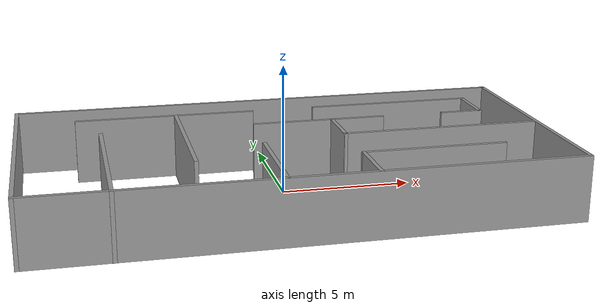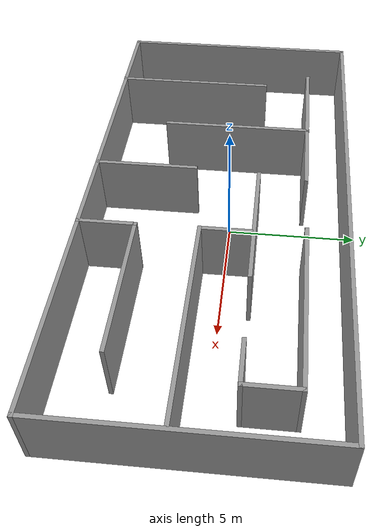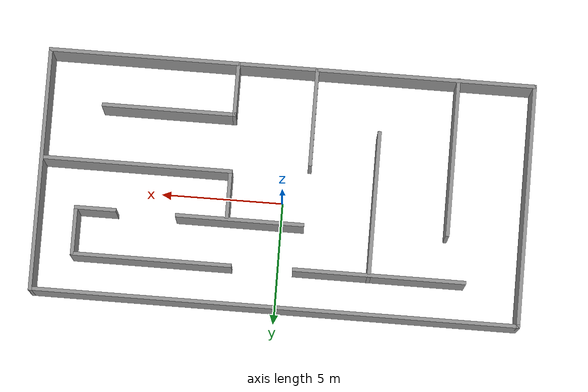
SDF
<?xml version='1.0'?>
<sdf version='1.7'>
  <model name='room1'>
    <link name='Wall_0'>
      <pose>0 4.5075 0 0 -0 0</pose>
      <self_collide>0</self_collide>
      <enable_wind>0</enable_wind>
      <kinematic>0</kinematic>
      <visual name='Wall_0_Visual'>
        <pose>0 0 1.25 0 -0 0</pose>
        <geometry>
          <box>
            <size>20 0.15 2.5</size>
          </box>
        </geometry>
        <material>
          <script>
            <uri>file://media/materials/scripts/gazebo.material</uri>
            <name>Gazebo/Grey</name>
          </script>
          <ambient>1 1 1 1</ambient>
          <shader type='pixel'/>
        </material>
        <meta>
          <layer>0</layer>
        </meta>
        <transparency>0</transparency>
        <cast_shadows>1</cast_shadows>
      </visual>
      <collision name='Wall_0_Collision'>
        <laser_retro>0</laser_retro>
        <max_contacts>10</max_contacts>
        <pose>0 0 1.25 0 -0 0</pose>
        <geometry>
          <box>
            <size>20 0.15 2.5</size>
          </box>
        </geometry>
        <surface>
          <friction>
            <ode>
              <mu>1</mu>
              <mu2>1</mu2>
              <fdir1>0 0 0</fdir1>
              <slip1>0</slip1>
              <slip2>0</slip2>
            </ode>
            <torsional>
              <coefficient>1</coefficient>
              <patch_radius>0</patch_radius>
              <surface_radius>0</surface_radius>
              <use_patch_radius>1</use_patch_radius>
              <ode>
                <slip>0</slip>
              </ode>
            </torsional>
          </friction>
          <bounce>
            <restitution_coefficient>0</restitution_coefficient>
            <threshold>1e+06</threshold>
          </bounce>
          <contact>
            <collide_without_contact>0</collide_without_contact>
            <collide_without_contact_bitmask>1</collide_without_contact_bitmask>
            <collide_bitmask>1</collide_bitmask>
            <ode>
              <soft_cfm>0</soft_cfm>
              <soft_erp>0.2</soft_erp>
              <kp>1e+13</kp>
              <kd>1</kd>
              <max_vel>0.01</max_vel>
              <min_depth>0</min_depth>
            </ode>
            <bullet>
              <split_impulse>1</split_impulse>
              <split_impulse_penetration_threshold>-0.01</split_impulse_penetration_threshold>
              <soft_cfm>0</soft_cfm>
              <soft_erp>0.2</soft_erp>
              <kp>1e+13</kp>
              <kd>1</kd>
            </bullet>
          </contact>
        </surface>
      </collision>
    </link>
    <link name='Wall_1'>
      <pose>9.925 -0.4175 0 0 0 -1.5708</pose>
      <self_collide>0</self_collide>
      <enable_wind>0</enable_wind>
      <kinematic>0</kinematic>
      <visual name='Wall_1_Visual'>
        <pose>0 0 1.25 0 -0 0</pose>
        <geometry>
          <box>
            <size>10 0.15 2.5</size>
          </box>
        </geometry>
        <material>
          <script>
            <uri>file://media/materials/scripts/gazebo.material</uri>
            <name>Gazebo/Grey</name>
          </script>
          <ambient>1 1 1 1</ambient>
          <shader type='pixel'/>
        </material>
        <meta>
          <layer>0</layer>
        </meta>
        <transparency>0</transparency>
        <cast_shadows>1</cast_shadows>
      </visual>
      <collision name='Wall_1_Collision'>
        <laser_retro>0</laser_retro>
        <max_contacts>10</max_contacts>
        <pose>0 0 1.25 0 -0 0</pose>
        <geometry>
          <box>
            <size>10 0.15 2.5</size>
          </box>
        </geometry>
        <surface>
          <friction>
            <ode>
              <mu>1</mu>
              <mu2>1</mu2>
              <fdir1>0 0 0</fdir1>
              <slip1>0</slip1>
              <slip2>0</slip2>
            </ode>
            <torsional>
              <coefficient>1</coefficient>
              <patch_radius>0</patch_radius>
              <surface_radius>0</surface_radius>
              <use_patch_radius>1</use_patch_radius>
              <ode>
                <slip>0</slip>
              </ode>
            </torsional>
          </friction>
          <bounce>
            <restitution_coefficient>0</restitution_coefficient>
            <threshold>1e+06</threshold>
          </bounce>
          <contact>
            <collide_without_contact>0</collide_without_contact>
            <collide_without_contact_bitmask>1</collide_without_contact_bitmask>
            <collide_bitmask>1</collide_bitmask>
            <ode>
              <soft_cfm>0</soft_cfm>
              <soft_erp>0.2</soft_erp>
              <kp>1e+13</kp>
              <kd>1</kd>
              <max_vel>0.01</max_vel>
              <min_depth>0</min_depth>
            </ode>
            <bullet>
              <split_impulse>1</split_impulse>
              <split_impulse_penetration_threshold>-0.01</split_impulse_penetration_threshold>
              <soft_cfm>0</soft_cfm>
              <soft_erp>0.2</soft_erp>
              <kp>1e+13</kp>
              <kd>1</kd>
            </bullet>
          </contact>
        </surface>
      </collision>
    </link>
    <link name='Wall_10'>
      <pose>1.665 1.0675 0 0 -0 3.14159</pose>
      <self_collide>0</self_collide>
      <enable_wind>0</enable_wind>
      <kinematic>0</kinematic>
      <visual name='Wall_10_Visual'>
        <pose>0 0 1.25 0 -0 0</pose>
        <geometry>
          <box>
            <size>5.25 0.15 2.5</size>
          </box>
        </geometry>
        <material>
          <script>
            <uri>file://media/materials/scripts/gazebo.material</uri>
            <name>Gazebo/Grey</name>
          </script>
          <ambient>1 1 1 1</ambient>
          <shader type='pixel'/>
        </material>
        <meta>
          <layer>0</layer>
        </meta>
        <transparency>0</transparency>
        <cast_shadows>1</cast_shadows>
      </visual>
      <collision name='Wall_10_Collision'>
        <laser_retro>0</laser_retro>
        <max_contacts>10</max_contacts>
        <pose>0 0 1.25 0 -0 0</pose>
        <geometry>
          <box>
            <size>5.25 0.15 2.5</size>
          </box>
        </geometry>
        <surface>
          <friction>
            <ode>
              <mu>1</mu>
              <mu2>1</mu2>
              <fdir1>0 0 0</fdir1>
              <slip1>0</slip1>
              <slip2>0</slip2>
            </ode>
            <torsional>
              <coefficient>1</coefficient>
              <patch_radius>0</patch_radius>
              <surface_radius>0</surface_radius>
              <use_patch_radius>1</use_patch_radius>
              <ode>
                <slip>0</slip>
              </ode>
            </torsional>
          </friction>
          <bounce>
            <restitution_coefficient>0</restitution_coefficient>
            <threshold>1e+06</threshold>
          </bounce>
          <contact>
            <collide_without_contact>0</collide_without_contact>
            <collide_without_contact_bitmask>1</collide_without_contact_bitmask>
            <collide_bitmask>1</collide_bitmask>
            <ode>
              <soft_cfm>0</soft_cfm>
              <soft_erp>0.2</soft_erp>
              <kp>1e+13</kp>
              <kd>1</kd>
              <max_vel>0.01</max_vel>
              <min_depth>0</min_depth>
            </ode>
            <bullet>
              <split_impulse>1</split_impulse>
              <split_impulse_penetration_threshold>-0.01</split_impulse_penetration_threshold>
              <soft_cfm>0</soft_cfm>
              <soft_erp>0.2</soft_erp>
              <kp>1e+13</kp>
              <kd>1</kd>
            </bullet>
          </contact>
        </surface>
      </collision>
    </link>
    <link name='Wall_12'>
      <pose>-3.745 -0.0075 0 0 0 -1.5708</pose>
      <self_collide>0</self_collide>
      <enable_wind>0</enable_wind>
      <kinematic>0</kinematic>
      <visual name='Wall_12_Visual'>
        <pose>0 0 1.25 0 -0 0</pose>
        <geometry>
          <box>
            <size>6 0.15 2.5</size>
          </box>
        </geometry>
        <material>
          <script>
            <uri>file://media/materials/scripts/gazebo.material</uri>
            <name>Gazebo/Grey</name>
          </script>
          <ambient>1 1 1 1</ambient>
          <shader type='pixel'/>
        </material>
        <meta>
          <layer>0</layer>
        </meta>
        <transparency>0</transparency>
        <cast_shadows>1</cast_shadows>
      </visual>
      <collision name='Wall_12_Collision'>
        <laser_retro>0</laser_retro>
        <max_contacts>10</max_contacts>
        <pose>0 0 1.25 0 -0 0</pose>
        <geometry>
          <box>
            <size>6 0.15 2.5</size>
          </box>
        </geometry>
        <surface>
          <friction>
            <ode>
              <mu>1</mu>
              <mu2>1</mu2>
              <fdir1>0 0 0</fdir1>
              <slip1>0</slip1>
              <slip2>0</slip2>
            </ode>
            <torsional>
              <coefficient>1</coefficient>
              <patch_radius>0</patch_radius>
              <surface_radius>0</surface_radius>
              <use_patch_radius>1</use_patch_radius>
              <ode>
                <slip>0</slip>
              </ode>
            </torsional>
          </friction>
          <bounce>
            <restitution_coefficient>0</restitution_coefficient>
            <threshold>1e+06</threshold>
          </bounce>
          <contact>
            <collide_without_contact>0</collide_without_contact>
            <collide_without_contact_bitmask>1</collide_without_contact_bitmask>
            <collide_bitmask>1</collide_bitmask>
            <ode>
              <soft_cfm>0</soft_cfm>
              <soft_erp>0.2</soft_erp>
              <kp>1e+13</kp>
              <kd>1</kd>
              <max_vel>0.01</max_vel>
              <min_depth>0</min_depth>
            </ode>
            <bullet>
              <split_impulse>1</split_impulse>
              <split_impulse_penetration_threshold>-0.01</split_impulse_penetration_threshold>
              <soft_cfm>0</soft_cfm>
              <soft_erp>0.2</soft_erp>
              <kp>1e+13</kp>
              <kd>1</kd>
            </bullet>
          </contact>
        </surface>
      </collision>
    </link>
    <link name='Wall_14'>
      <pose>-6.805 -2.1775 0 0 0 -1.5708</pose>
      <self_collide>0</self_collide>
      <enable_wind>0</enable_wind>
      <kinematic>0</kinematic>
      <visual name='Wall_14_Visual'>
        <pose>0 0 1.25 0 -0 0</pose>
        <geometry>
          <box>
            <size>6.5 0.15 2.5</size>
          </box>
        </geometry>
        <material>
          <script>
            <uri>file://media/materials/scripts/gazebo.material</uri>
            <name>Gazebo/Grey</name>
          </script>
          <ambient>1 1 1 1</ambient>
          <shader type='pixel'/>
        </material>
        <meta>
          <layer>0</layer>
        </meta>
        <transparency>0</transparency>
        <cast_shadows>1</cast_shadows>
      </visual>
      <collision name='Wall_14_Collision'>
        <laser_retro>0</laser_retro>
        <max_contacts>10</max_contacts>
        <pose>0 0 1.25 0 -0 0</pose>
        <geometry>
          <box>
            <size>6.5 0.15 2.5</size>
          </box>
        </geometry>
        <surface>
          <friction>
            <ode>
              <mu>1</mu>
              <mu2>1</mu2>
              <fdir1>0 0 0</fdir1>
              <slip1>0</slip1>
              <slip2>0</slip2>
            </ode>
            <torsional>
              <coefficient>1</coefficient>
              <patch_radius>0</patch_radius>
              <surface_radius>0</surface_radius>
              <use_patch_radius>1</use_patch_radius>
              <ode>
                <slip>0</slip>
              </ode>
            </torsional>
          </friction>
          <bounce>
            <restitution_coefficient>0</restitution_coefficient>
            <threshold>1e+06</threshold>
          </bounce>
          <contact>
            <collide_without_contact>0</collide_without_contact>
            <collide_without_contact_bitmask>1</collide_without_contact_bitmask>
            <collide_bitmask>1</collide_bitmask>
            <ode>
              <soft_cfm>0</soft_cfm>
              <soft_erp>0.2</soft_erp>
              <kp>1e+13</kp>
              <kd>1</kd>
              <max_vel>0.01</max_vel>
              <min_depth>0</min_depth>
            </ode>
            <bullet>
              <split_impulse>1</split_impulse>
              <split_impulse_penetration_threshold>-0.01</split_impulse_penetration_threshold>
              <soft_cfm>0</soft_cfm>
              <soft_erp>0.2</soft_erp>
              <kp>1e+13</kp>
              <kd>1</kd>
            </bullet>
          </contact>
        </surface>
      </collision>
    </link>
    <link name='Wall_16'>
      <pose>2.195 0.0325 0 0 0 -1.5708</pose>
      <self_collide>0</self_collide>
      <enable_wind>0</enable_wind>
      <kinematic>0</kinematic>
      <visual name='Wall_16_Visual'>
        <pose>0 0 1.25 0 -0 0</pose>
        <geometry>
          <box>
            <size>2 0.15 2.5</size>
          </box>
        </geometry>
        <material>
          <script>
            <uri>file://media/materials/scripts/gazebo.material</uri>
            <name>Gazebo/Grey</name>
          </script>
          <ambient>1 1 1 1</ambient>
          <shader type='pixel'/>
        </material>
        <meta>
          <layer>0</layer>
        </meta>
        <transparency>0</transparency>
        <cast_shadows>1</cast_shadows>
      </visual>
      <collision name='Wall_16_Collision'>
        <laser_retro>0</laser_retro>
        <max_contacts>10</max_contacts>
        <pose>0 0 1.25 0 -0 0</pose>
        <geometry>
          <box>
            <size>2 0.15 2.5</size>
          </box>
        </geometry>
        <surface>
          <friction>
            <ode>
              <mu>1</mu>
              <mu2>1</mu2>
              <fdir1>0 0 0</fdir1>
              <slip1>0</slip1>
              <slip2>0</slip2>
            </ode>
            <torsional>
              <coefficient>1</coefficient>
              <patch_radius>0</patch_radius>
              <surface_radius>0</surface_radius>
              <use_patch_radius>1</use_patch_radius>
              <ode>
                <slip>0</slip>
              </ode>
            </torsional>
          </friction>
          <bounce>
            <restitution_coefficient>0</restitution_coefficient>
            <threshold>1e+06</threshold>
          </bounce>
          <contact>
            <collide_without_contact>0</collide_without_contact>
            <collide_without_contact_bitmask>1</collide_without_contact_bitmask>
            <collide_bitmask>1</collide_bitmask>
            <ode>
              <soft_cfm>0</soft_cfm>
              <soft_erp>0.2</soft_erp>
              <kp>1e+13</kp>
              <kd>1</kd>
              <max_vel>0.01</max_vel>
              <min_depth>0</min_depth>
            </ode>
            <bullet>
              <split_impulse>1</split_impulse>
              <split_impulse_penetration_threshold>-0.01</split_impulse_penetration_threshold>
              <soft_cfm>0</soft_cfm>
              <soft_erp>0.2</soft_erp>
              <kp>1e+13</kp>
              <kd>1</kd>
            </bullet>
          </contact>
        </surface>
      </collision>
    </link>
    <link name='Wall_18'>
      <pose>2.225 -4.2825 0 0 0 -1.5708</pose>
      <self_collide>0</self_collide>
      <enable_wind>0</enable_wind>
      <kinematic>0</kinematic>
      <visual name='Wall_18_Visual'>
        <pose>0 0 1.25 0 -0 0</pose>
        <geometry>
          <box>
            <size>2.25 0.15 2.5</size>
          </box>
        </geometry>
        <material>
          <script>
            <uri>file://media/materials/scripts/gazebo.material</uri>
            <name>Gazebo/Grey</name>
          </script>
          <ambient>1 1 1 1</ambient>
          <shader type='pixel'/>
        </material>
        <meta>
          <layer>0</layer>
        </meta>
        <transparency>0</transparency>
        <cast_shadows>1</cast_shadows>
      </visual>
      <collision name='Wall_18_Collision'>
        <laser_retro>0</laser_retro>
        <max_contacts>10</max_contacts>
        <pose>0 0 1.25 0 -0 0</pose>
        <geometry>
          <box>
            <size>2.25 0.15 2.5</size>
          </box>
        </geometry>
        <surface>
          <friction>
            <ode>
              <mu>1</mu>
              <mu2>1</mu2>
              <fdir1>0 0 0</fdir1>
              <slip1>0</slip1>
              <slip2>0</slip2>
            </ode>
            <torsional>
              <coefficient>1</coefficient>
              <patch_radius>0</patch_radius>
              <surface_radius>0</surface_radius>
              <use_patch_radius>1</use_patch_radius>
              <ode>
                <slip>0</slip>
              </ode>
            </torsional>
          </friction>
          <bounce>
            <restitution_coefficient>0</restitution_coefficient>
            <threshold>1e+06</threshold>
          </bounce>
          <contact>
            <collide_without_contact>0</collide_without_contact>
            <collide_without_contact_bitmask>1</collide_without_contact_bitmask>
            <collide_bitmask>1</collide_bitmask>
            <ode>
              <soft_cfm>0</soft_cfm>
              <soft_erp>0.2</soft_erp>
              <kp>1e+13</kp>
              <kd>1</kd>
              <max_vel>0.01</max_vel>
              <min_depth>0</min_depth>
            </ode>
            <bullet>
              <split_impulse>1</split_impulse>
              <split_impulse_penetration_threshold>-0.01</split_impulse_penetration_threshold>
              <soft_cfm>0</soft_cfm>
              <soft_erp>0.2</soft_erp>
              <kp>1e+13</kp>
              <kd>1</kd>
            </bullet>
          </contact>
        </surface>
      </collision>
    </link>
    <link name='Wall_2'>
      <pose>0 -5.3425 0 0 -0 3.14159</pose>
      <self_collide>0</self_collide>
      <enable_wind>0</enable_wind>
      <kinematic>0</kinematic>
      <visual name='Wall_2_Visual'>
        <pose>0 0 1.25 0 -0 0</pose>
        <geometry>
          <box>
            <size>20 0.15 2.5</size>
          </box>
        </geometry>
        <material>
          <script>
            <uri>file://media/materials/scripts/gazebo.material</uri>
            <name>Gazebo/Grey</name>
          </script>
          <ambient>1 1 1 1</ambient>
          <shader type='pixel'/>
        </material>
        <meta>
          <layer>0</layer>
        </meta>
        <transparency>0</transparency>
        <cast_shadows>1</cast_shadows>
      </visual>
      <collision name='Wall_2_Collision'>
        <laser_retro>0</laser_retro>
        <max_contacts>10</max_contacts>
        <pose>0 0 1.25 0 -0 0</pose>
        <geometry>
          <box>
            <size>20 0.15 2.5</size>
          </box>
        </geometry>
        <surface>
          <friction>
            <ode>
              <mu>1</mu>
              <mu2>1</mu2>
              <fdir1>0 0 0</fdir1>
              <slip1>0</slip1>
              <slip2>0</slip2>
            </ode>
            <torsional>
              <coefficient>1</coefficient>
              <patch_radius>0</patch_radius>
              <surface_radius>0</surface_radius>
              <use_patch_radius>1</use_patch_radius>
              <ode>
                <slip>0</slip>
              </ode>
            </torsional>
          </friction>
          <bounce>
            <restitution_coefficient>0</restitution_coefficient>
            <threshold>1e+06</threshold>
          </bounce>
          <contact>
            <collide_without_contact>0</collide_without_contact>
            <collide_without_contact_bitmask>1</collide_without_contact_bitmask>
            <collide_bitmask>1</collide_bitmask>
            <ode>
              <soft_cfm>0</soft_cfm>
              <soft_erp>0.2</soft_erp>
              <kp>1e+13</kp>
              <kd>1</kd>
              <max_vel>0.01</max_vel>
              <min_depth>0</min_depth>
            </ode>
            <bullet>
              <split_impulse>1</split_impulse>
              <split_impulse_penetration_threshold>-0.01</split_impulse_penetration_threshold>
              <soft_cfm>0</soft_cfm>
              <soft_erp>0.2</soft_erp>
              <kp>1e+13</kp>
              <kd>1</kd>
            </bullet>
          </contact>
        </surface>
      </collision>
    </link>
    <link name='Wall_20'>
      <pose>5.995 -0.8925 0 0 -0 0</pose>
      <self_collide>0</self_collide>
      <enable_wind>0</enable_wind>
      <kinematic>0</kinematic>
      <visual name='Wall_20_Visual'>
        <pose>0 0 1.25 0 -0 0</pose>
        <geometry>
          <box>
            <size>7.75 0.15 2.5</size>
          </box>
        </geometry>
        <material>
          <script>
            <uri>file://media/materials/scripts/gazebo.material</uri>
            <name>Gazebo/Grey</name>
          </script>
          <ambient>1 1 1 1</ambient>
          <shader type='pixel'/>
        </material>
        <meta>
          <layer>0</layer>
        </meta>
        <transparency>0</transparency>
        <cast_shadows>1</cast_shadows>
      </visual>
      <collision name='Wall_20_Collision'>
        <laser_retro>0</laser_retro>
        <max_contacts>10</max_contacts>
        <pose>0 0 1.25 0 -0 0</pose>
        <geometry>
          <box>
            <size>7.75 0.15 2.5</size>
          </box>
        </geometry>
        <surface>
          <friction>
            <ode>
              <mu>1</mu>
              <mu2>1</mu2>
              <fdir1>0 0 0</fdir1>
              <slip1>0</slip1>
              <slip2>0</slip2>
            </ode>
            <torsional>
              <coefficient>1</coefficient>
              <patch_radius>0</patch_radius>
              <surface_radius>0</surface_radius>
              <use_patch_radius>1</use_patch_radius>
              <ode>
                <slip>0</slip>
              </ode>
            </torsional>
          </friction>
          <bounce>
            <restitution_coefficient>0</restitution_coefficient>
            <threshold>1e+06</threshold>
          </bounce>
          <contact>
            <collide_without_contact>0</collide_without_contact>
            <collide_without_contact_bitmask>1</collide_without_contact_bitmask>
            <collide_bitmask>1</collide_bitmask>
            <ode>
              <soft_cfm>0</soft_cfm>
              <soft_erp>0.2</soft_erp>
              <kp>1e+13</kp>
              <kd>1</kd>
              <max_vel>0.01</max_vel>
              <min_depth>0</min_depth>
            </ode>
            <bullet>
              <split_impulse>1</split_impulse>
              <split_impulse_penetration_threshold>-0.01</split_impulse_penetration_threshold>
              <soft_cfm>0</soft_cfm>
              <soft_erp>0.2</soft_erp>
              <kp>1e+13</kp>
              <kd>1</kd>
            </bullet>
          </contact>
        </surface>
      </collision>
    </link>
    <link name='Wall_22'>
      <pose>4.9 -3.2325 0 0 -0 0</pose>
      <self_collide>0</self_collide>
      <enable_wind>0</enable_wind>
      <kinematic>0</kinematic>
      <visual name='Wall_22_Visual'>
        <pose>0 0 1.25 0 -0 0</pose>
        <geometry>
          <box>
            <size>5.5 0.15 2.5</size>
          </box>
        </geometry>
        <material>
          <script>
            <uri>file://media/materials/scripts/gazebo.material</uri>
            <name>Gazebo/Grey</name>
          </script>
          <ambient>1 1 1 1</ambient>
          <shader type='pixel'/>
        </material>
        <meta>
          <layer>0</layer>
        </meta>
        <transparency>0</transparency>
        <cast_shadows>1</cast_shadows>
      </visual>
      <collision name='Wall_22_Collision'>
        <laser_retro>0</laser_retro>
        <max_contacts>10</max_contacts>
        <pose>0 0 1.25 0 -0 0</pose>
        <geometry>
          <box>
            <size>5.5 0.15 2.5</size>
          </box>
        </geometry>
        <surface>
          <friction>
            <ode>
              <mu>1</mu>
              <mu2>1</mu2>
              <fdir1>0 0 0</fdir1>
              <slip1>0</slip1>
              <slip2>0</slip2>
            </ode>
            <torsional>
              <coefficient>1</coefficient>
              <patch_radius>0</patch_radius>
              <surface_radius>0</surface_radius>
              <use_patch_radius>1</use_patch_radius>
              <ode>
                <slip>0</slip>
              </ode>
            </torsional>
          </friction>
          <bounce>
            <restitution_coefficient>0</restitution_coefficient>
            <threshold>1e+06</threshold>
          </bounce>
          <contact>
            <collide_without_contact>0</collide_without_contact>
            <collide_without_contact_bitmask>1</collide_without_contact_bitmask>
            <collide_bitmask>1</collide_bitmask>
            <ode>
              <soft_cfm>0</soft_cfm>
              <soft_erp>0.2</soft_erp>
              <kp>1e+13</kp>
              <kd>1</kd>
              <max_vel>0.01</max_vel>
              <min_depth>0</min_depth>
            </ode>
            <bullet>
              <split_impulse>1</split_impulse>
              <split_impulse_penetration_threshold>-0.01</split_impulse_penetration_threshold>
              <soft_cfm>0</soft_cfm>
              <soft_erp>0.2</soft_erp>
              <kp>1e+13</kp>
              <kd>1</kd>
            </bullet>
          </contact>
        </surface>
      </collision>
    </link>
    <link name='Wall_24'>
      <pose>-1.015 -3.3675 0 0 -0 1.5708</pose>
      <self_collide>0</self_collide>
      <enable_wind>0</enable_wind>
      <kinematic>0</kinematic>
      <visual name='Wall_24_Visual'>
        <pose>0 0 1.25 0 -0 0</pose>
        <geometry>
          <box>
            <size>4 0.15 2.5</size>
          </box>
        </geometry>
        <material>
          <script>
            <uri>file://media/materials/scripts/gazebo.material</uri>
            <name>Gazebo/Grey</name>
          </script>
          <ambient>1 1 1 1</ambient>
          <shader type='pixel'/>
        </material>
        <meta>
          <layer>0</layer>
        </meta>
        <transparency>0</transparency>
        <cast_shadows>1</cast_shadows>
      </visual>
      <collision name='Wall_24_Collision'>
        <laser_retro>0</laser_retro>
        <max_contacts>10</max_contacts>
        <pose>0 0 1.25 0 -0 0</pose>
        <geometry>
          <box>
            <size>4 0.15 2.5</size>
          </box>
        </geometry>
        <surface>
          <friction>
            <ode>
              <mu>1</mu>
              <mu2>1</mu2>
              <fdir1>0 0 0</fdir1>
              <slip1>0</slip1>
              <slip2>0</slip2>
            </ode>
            <torsional>
              <coefficient>1</coefficient>
              <patch_radius>0</patch_radius>
              <surface_radius>0</surface_radius>
              <use_patch_radius>1</use_patch_radius>
              <ode>
                <slip>0</slip>
              </ode>
            </torsional>
          </friction>
          <bounce>
            <restitution_coefficient>0</restitution_coefficient>
            <threshold>1e+06</threshold>
          </bounce>
          <contact>
            <collide_without_contact>0</collide_without_contact>
            <collide_without_contact_bitmask>1</collide_without_contact_bitmask>
            <collide_bitmask>1</collide_bitmask>
            <ode>
              <soft_cfm>0</soft_cfm>
              <soft_erp>0.2</soft_erp>
              <kp>1e+13</kp>
              <kd>1</kd>
              <max_vel>0.01</max_vel>
              <min_depth>0</min_depth>
            </ode>
            <bullet>
              <split_impulse>1</split_impulse>
              <split_impulse_penetration_threshold>-0.01</split_impulse_penetration_threshold>
              <soft_cfm>0</soft_cfm>
              <soft_erp>0.2</soft_erp>
              <kp>1e+13</kp>
              <kd>1</kd>
            </bullet>
          </contact>
        </surface>
      </collision>
    </link>
    <link name='Wall_3'>
      <pose>-9.925 -0.4175 0 0 -0 1.5708</pose>
      <self_collide>0</self_collide>
      <enable_wind>0</enable_wind>
      <kinematic>0</kinematic>
      <visual name='Wall_3_Visual'>
        <pose>0 0 1.25 0 -0 0</pose>
        <geometry>
          <box>
            <size>10 0.15 2.5</size>
          </box>
        </geometry>
        <material>
          <script>
            <uri>file://media/materials/scripts/gazebo.material</uri>
            <name>Gazebo/Grey</name>
          </script>
          <ambient>1 1 1 1</ambient>
          <shader type='pixel'/>
        </material>
        <meta>
          <layer>0</layer>
        </meta>
        <transparency>0</transparency>
        <cast_shadows>1</cast_shadows>
      </visual>
      <collision name='Wall_3_Collision'>
        <laser_retro>0</laser_retro>
        <max_contacts>10</max_contacts>
        <pose>0 0 1.25 0 -0 0</pose>
        <geometry>
          <box>
            <size>10 0.15 2.5</size>
          </box>
        </geometry>
        <surface>
          <friction>
            <ode>
              <mu>1</mu>
              <mu2>1</mu2>
              <fdir1>0 0 0</fdir1>
              <slip1>0</slip1>
              <slip2>0</slip2>
            </ode>
            <torsional>
              <coefficient>1</coefficient>
              <patch_radius>0</patch_radius>
              <surface_radius>0</surface_radius>
              <use_patch_radius>1</use_patch_radius>
              <ode>
                <slip>0</slip>
              </ode>
            </torsional>
          </friction>
          <bounce>
            <restitution_coefficient>0</restitution_coefficient>
            <threshold>1e+06</threshold>
          </bounce>
          <contact>
            <collide_without_contact>0</collide_without_contact>
            <collide_without_contact_bitmask>1</collide_without_contact_bitmask>
            <collide_bitmask>1</collide_bitmask>
            <ode>
              <soft_cfm>0</soft_cfm>
              <soft_erp>0.2</soft_erp>
              <kp>1e+13</kp>
              <kd>1</kd>
              <max_vel>0.01</max_vel>
              <min_depth>0</min_depth>
            </ode>
            <bullet>
              <split_impulse>1</split_impulse>
              <split_impulse_penetration_threshold>-0.01</split_impulse_penetration_threshold>
              <soft_cfm>0</soft_cfm>
              <soft_erp>0.2</soft_erp>
              <kp>1e+13</kp>
              <kd>1</kd>
            </bullet>
          </contact>
        </surface>
      </collision>
    </link>
    <link name='Wall_6'>
      <pose>-4.1596 2.9075 0 0 -0 0</pose>
      <self_collide>0</self_collide>
      <enable_wind>0</enable_wind>
      <kinematic>0</kinematic>
      <inertial>
        <inertia>
          <ixx>0</ixx>
          <ixy>0</ixy>
          <ixz>0</ixz>
          <iyy>0</iyy>
          <iyz>0</iyz>
          <izz>0</izz>
        </inertia>
        <mass>0</mass>
        <pose>0 0 0 0 -0 0</pose>
      </inertial>
      <visual name='Wall_6_Visual'>
        <pose>0 0 1.25 0 -0 0</pose>
        <geometry>
          <box>
            <size>7.0716 0.15 2.5</size>
          </box>
        </geometry>
        <material>
          <script>
            <uri>file://media/materials/scripts/gazebo.material</uri>
            <name>Gazebo/Grey</name>
          </script>
          <ambient>1 1 1 1</ambient>
          <shader type='pixel'/>
        </material>
        <meta>
          <layer>0</layer>
        </meta>
        <transparency>0</transparency>
        <cast_shadows>1</cast_shadows>
      </visual>
      <collision name='Wall_6_Collision'>
        <laser_retro>0</laser_retro>
        <max_contacts>10</max_contacts>
        <pose>0 0 1.25 0 -0 0</pose>
        <geometry>
          <box>
            <size>7.0716 0.15 2.5</size>
          </box>
        </geometry>
        <surface>
          <friction>
            <ode>
              <mu>1</mu>
              <mu2>1</mu2>
              <fdir1>0 0 0</fdir1>
              <slip1>0</slip1>
              <slip2>0</slip2>
            </ode>
            <torsional>
              <coefficient>1</coefficient>
              <patch_radius>0</patch_radius>
              <surface_radius>0</surface_radius>
              <use_patch_radius>1</use_patch_radius>
              <ode>
                <slip>0</slip>
              </ode>
            </torsional>
          </friction>
          <bounce>
            <restitution_coefficient>0</restitution_coefficient>
            <threshold>1e+06</threshold>
          </bounce>
          <contact>
            <collide_without_contact>0</collide_without_contact>
            <collide_without_contact_bitmask>1</collide_without_contact_bitmask>
            <collide_bitmask>1</collide_bitmask>
            <ode>
              <soft_cfm>0</soft_cfm>
              <soft_erp>0.2</soft_erp>
              <kp>1e+13</kp>
              <kd>1</kd>
              <max_vel>0.01</max_vel>
              <min_depth>0</min_depth>
            </ode>
            <bullet>
              <split_impulse>1</split_impulse>
              <split_impulse_penetration_threshold>-0.01</split_impulse_penetration_threshold>
              <soft_cfm>0</soft_cfm>
              <soft_erp>0.2</soft_erp>
              <kp>1e+13</kp>
              <kd>1</kd>
            </bullet>
          </contact>
        </surface>
      </collision>
    </link>
    <link name='Wall_6_clone'>
      <pose>5.13571 2.95279 0 0 -0 0</pose>
      <self_collide>0</self_collide>
      <enable_wind>0</enable_wind>
      <kinematic>0</kinematic>
      <inertial>
        <inertia>
          <ixx>0</ixx>
          <ixy>0</ixy>
          <ixz>0</ixz>
          <iyy>0</iyy>
          <iyz>0</iyz>
          <izz>0</izz>
        </inertia>
        <mass>0</mass>
        <pose>0 0 0 0 -0 0</pose>
      </inertial>
      <visual name='Wall_6_Visual'>
        <pose>0 0 1.25 0 -0 0</pose>
        <geometry>
          <box>
            <size>6.57055 0.15 2.5</size>
          </box>
        </geometry>
        <material>
          <script>
            <uri>file://media/materials/scripts/gazebo.material</uri>
            <name>Gazebo/Grey</name>
          </script>
          <ambient>1 1 1 1</ambient>
          <shader type='pixel'/>
        </material>
        <meta>
          <layer>0</layer>
        </meta>
        <transparency>0</transparency>
        <cast_shadows>1</cast_shadows>
      </visual>
      <collision name='Wall_6_Collision'>
        <laser_retro>0</laser_retro>
        <max_contacts>10</max_contacts>
        <pose>0 0 1.25 0 -0 0</pose>
        <geometry>
          <box>
            <size>6.57055 0.15 2.5</size>
          </box>
        </geometry>
        <surface>
          <friction>
            <ode>
              <mu>1</mu>
              <mu2>1</mu2>
              <fdir1>0 0 0</fdir1>
              <slip1>0</slip1>
              <slip2>0</slip2>
            </ode>
            <torsional>
              <coefficient>1</coefficient>
              <patch_radius>0</patch_radius>
              <surface_radius>0</surface_radius>
              <use_patch_radius>1</use_patch_radius>
              <ode>
                <slip>0</slip>
              </ode>
            </torsional>
          </friction>
          <bounce>
            <restitution_coefficient>0</restitution_coefficient>
            <threshold>1e+06</threshold>
          </bounce>
          <contact>
            <collide_without_contact>0</collide_without_contact>
            <collide_without_contact_bitmask>1</collide_without_contact_bitmask>
            <collide_bitmask>1</collide_bitmask>
            <ode>
              <soft_cfm>0</soft_cfm>
              <soft_erp>0.2</soft_erp>
              <kp>1e+13</kp>
              <kd>1</kd>
              <max_vel>0.01</max_vel>
              <min_depth>0</min_depth>
            </ode>
            <bullet>
              <split_impulse>1</split_impulse>
              <split_impulse_penetration_threshold>-0.01</split_impulse_penetration_threshold>
              <soft_cfm>0</soft_cfm>
              <soft_erp>0.2</soft_erp>
              <kp>1e+13</kp>
              <kd>1</kd>
            </bullet>
          </contact>
        </surface>
      </collision>
    </link>
    <link name='Wall_7'>
      <pose>8.345 1.9925 0 0 0 -1.5708</pose>
      <self_collide>0</self_collide>
      <enable_wind>0</enable_wind>
      <kinematic>0</kinematic>
      <visual name='Wall_7_Visual'>
        <pose>0 0 1.25 0 -0 0</pose>
        <geometry>
          <box>
            <size>2 0.15 2.5</size>
          </box>
        </geometry>
        <material>
          <script>
            <uri>file://media/materials/scripts/gazebo.material</uri>
            <name>Gazebo/Grey</name>
          </script>
          <ambient>1 1 1 1</ambient>
          <shader type='pixel'/>
        </material>
        <meta>
          <layer>0</layer>
        </meta>
        <transparency>0</transparency>
        <cast_shadows>1</cast_shadows>
      </visual>
      <collision name='Wall_7_Collision'>
        <laser_retro>0</laser_retro>
        <max_contacts>10</max_contacts>
        <pose>0 0 1.25 0 -0 0</pose>
        <geometry>
          <box>
            <size>2 0.15 2.5</size>
          </box>
        </geometry>
        <surface>
          <friction>
            <ode>
              <mu>1</mu>
              <mu2>1</mu2>
              <fdir1>0 0 0</fdir1>
              <slip1>0</slip1>
              <slip2>0</slip2>
            </ode>
            <torsional>
              <coefficient>1</coefficient>
              <patch_radius>0</patch_radius>
              <surface_radius>0</surface_radius>
              <use_patch_radius>1</use_patch_radius>
              <ode>
                <slip>0</slip>
              </ode>
            </torsional>
          </friction>
          <bounce>
            <restitution_coefficient>0</restitution_coefficient>
            <threshold>1e+06</threshold>
          </bounce>
          <contact>
            <collide_without_contact>0</collide_without_contact>
            <collide_without_contact_bitmask>1</collide_without_contact_bitmask>
            <collide_bitmask>1</collide_bitmask>
            <ode>
              <soft_cfm>0</soft_cfm>
              <soft_erp>0.2</soft_erp>
              <kp>1e+13</kp>
              <kd>1</kd>
              <max_vel>0.01</max_vel>
              <min_depth>0</min_depth>
            </ode>
            <bullet>
              <split_impulse>1</split_impulse>
              <split_impulse_penetration_threshold>-0.01</split_impulse_penetration_threshold>
              <soft_cfm>0</soft_cfm>
              <soft_erp>0.2</soft_erp>
              <kp>1e+13</kp>
              <kd>1</kd>
            </bullet>
          </contact>
        </surface>
      </collision>
    </link>
    <link name='Wall_8'>
      <pose>7.565 1.0575 0 0 -0 3.14159</pose>
      <self_collide>0</self_collide>
      <enable_wind>0</enable_wind>
      <kinematic>0</kinematic>
      <visual name='Wall_8_Visual'>
        <pose>0 0 1.25 0 -0 0</pose>
        <geometry>
          <box>
            <size>1.71003 0.15 2.5</size>
          </box>
        </geometry>
        <material>
          <script>
            <uri>file://media/materials/scripts/gazebo.material</uri>
            <name>Gazebo/Grey</name>
          </script>
          <ambient>1 1 1 1</ambient>
          <shader type='pixel'/>
        </material>
        <meta>
          <layer>0</layer>
        </meta>
        <transparency>0</transparency>
        <cast_shadows>1</cast_shadows>
      </visual>
      <collision name='Wall_8_Collision'>
        <laser_retro>0</laser_retro>
        <max_contacts>10</max_contacts>
        <pose>0 0 1.25 0 -0 0</pose>
        <geometry>
          <box>
            <size>1.71003 0.15 2.5</size>
          </box>
        </geometry>
        <surface>
          <friction>
            <ode>
              <mu>1</mu>
              <mu2>1</mu2>
              <fdir1>0 0 0</fdir1>
              <slip1>0</slip1>
              <slip2>0</slip2>
            </ode>
            <torsional>
              <coefficient>1</coefficient>
              <patch_radius>0</patch_radius>
              <surface_radius>0</surface_radius>
              <use_patch_radius>1</use_patch_radius>
              <ode>
                <slip>0</slip>
              </ode>
            </torsional>
          </friction>
          <bounce>
            <restitution_coefficient>0</restitution_coefficient>
            <threshold>1e+06</threshold>
          </bounce>
          <contact>
            <collide_without_contact>0</collide_without_contact>
            <collide_without_contact_bitmask>1</collide_without_contact_bitmask>
            <collide_bitmask>1</collide_bitmask>
            <ode>
              <soft_cfm>0</soft_cfm>
              <soft_erp>0.2</soft_erp>
              <kp>1e+13</kp>
              <kd>1</kd>
              <max_vel>0.01</max_vel>
              <min_depth>0</min_depth>
            </ode>
            <bullet>
              <split_impulse>1</split_impulse>
              <split_impulse_penetration_threshold>-0.01</split_impulse_penetration_threshold>
              <soft_cfm>0</soft_cfm>
              <soft_erp>0.2</soft_erp>
              <kp>1e+13</kp>
              <kd>1</kd>
            </bullet>
          </contact>
        </surface>
      </collision>
    </link>
    <static>1</static>
    <allow_auto_disable>1</allow_auto_disable>
  </model>
</sdf>
